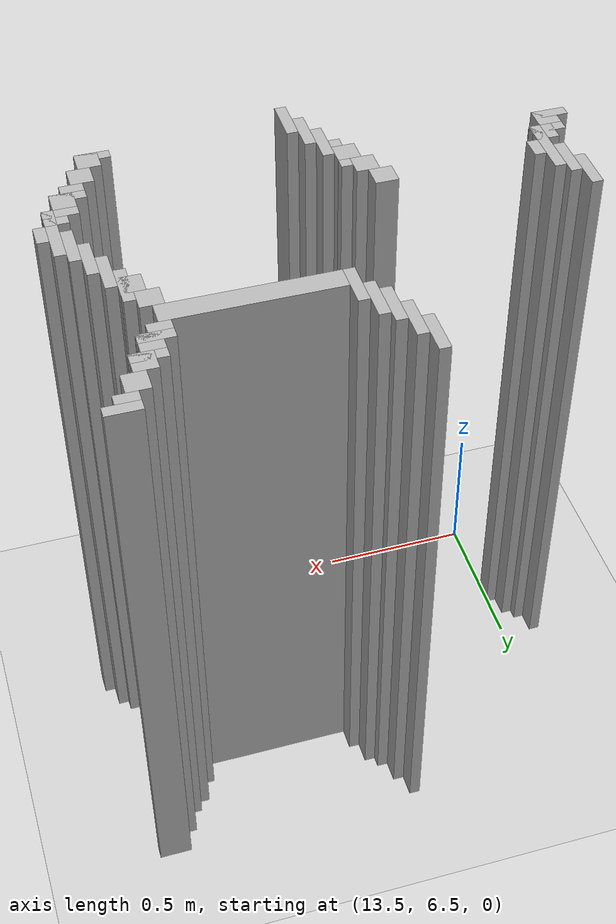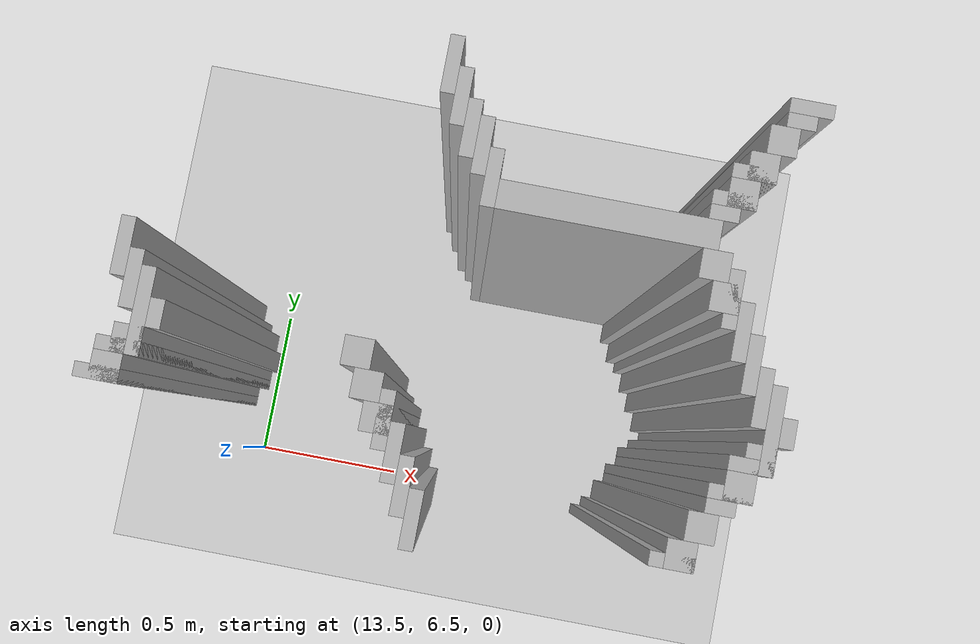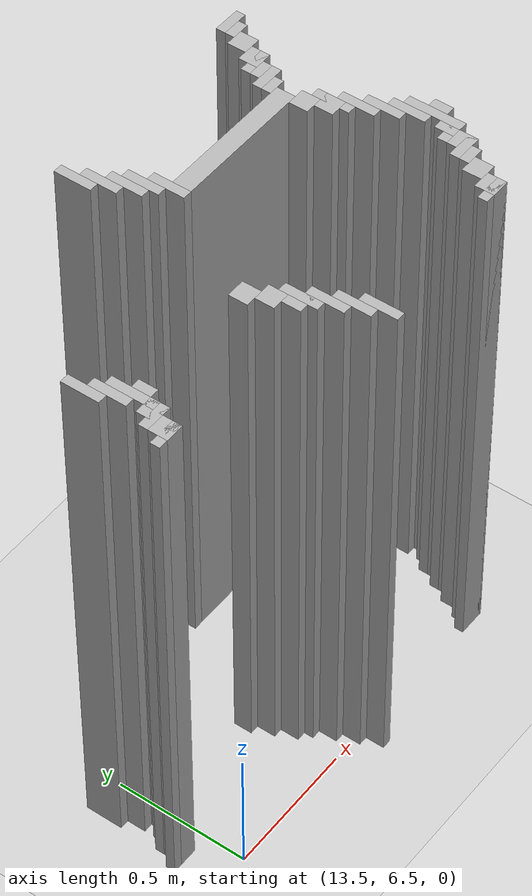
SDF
<sdf version="1.6">
 <world name="slam_world">
  <model name="ground_plane">
   <static>true</static>
   <link name="link">
    <collision name="collision">
     <geometry><plane><normal>0 0 1</normal><size>100 100</size></plane></geometry>
    </collision>
    <visual name="visual">
     <geometry><plane><normal>0 0 1</normal><size>100 100</size></plane></geometry>
     <material>
      <ambient>0.8 0.8 0.8 1</ambient>
      <diffuse>0.8 0.8 0.8 1</diffuse>
      <specular>0.8 0.8 0.8 1</specular>
     </material>
    </visual>
   </link>
  </model>
  <model name="wall_3228">
   <static>true</static>
   <pose>14.042923433874709 7.517401392111369 1.0 0 0 0</pose>
   <link name="link">
    <collision name="collision">
     <geometry><box><size>0.03480278422273782 0.13921113689095127 2.0</size></box></geometry>
    </collision>
    <visual name="visual">
     <geometry><box><size>0.03480278422273782 0.13921113689095127 2.0</size></box></geometry>
     <material><ambient>0.5 0.5 0.5 1</ambient><diffuse>0.7 0.7 0.7 1</diffuse></material>
    </visual>
   </link>
  </model>
  <model name="wall_3229">
   <static>true</static>
   <pose>14.878190255220417 7.569605568445476 1.0 0 0 0</pose>
   <link name="link">
    <collision name="collision">
     <geometry><box><size>0.10440835266821345 0.03480278422273782 2.0</size></box></geometry>
    </collision>
    <visual name="visual">
     <geometry><box><size>0.10440835266821345 0.03480278422273782 2.0</size></box></geometry>
     <material><ambient>0.5 0.5 0.5 1</ambient><diffuse>0.7 0.7 0.7 1</diffuse></material>
    </visual>
   </link>
  </model>
  <model name="wall_3238">
   <static>true</static>
   <pose>14.860788863109049 7.534802784222737 1.0 0 0 0</pose>
   <link name="link">
    <collision name="collision">
     <geometry><box><size>0.06960556844547564 0.03480278422273782 2.0</size></box></geometry>
    </collision>
    <visual name="visual">
     <geometry><box><size>0.06960556844547564 0.03480278422273782 2.0</size></box></geometry>
     <material><ambient>0.5 0.5 0.5 1</ambient><diffuse>0.7 0.7 0.7 1</diffuse></material>
    </visual>
   </link>
  </model>
  <model name="wall_3250">
   <static>true</static>
   <pose>14.077726218097448 7.447795823665893 1.0 0 0 0</pose>
   <link name="link">
    <collision name="collision">
     <geometry><box><size>0.03480278422273782 0.13921113689095127 2.0</size></box></geometry>
    </collision>
    <visual name="visual">
     <geometry><box><size>0.03480278422273782 0.13921113689095127 2.0</size></box></geometry>
     <material><ambient>0.5 0.5 0.5 1</ambient><diffuse>0.7 0.7 0.7 1</diffuse></material>
    </visual>
   </link>
  </model>
  <model name="wall_3251">
   <static>true</static>
   <pose>14.825986078886311 7.48259860788863 1.0 0 0 0</pose>
   <link name="link">
    <collision name="collision">
     <geometry><box><size>0.06960556844547564 0.06960556844547564 2.0</size></box></geometry>
    </collision>
    <visual name="visual">
     <geometry><box><size>0.06960556844547564 0.06960556844547564 2.0</size></box></geometry>
     <material><ambient>0.5 0.5 0.5 1</ambient><diffuse>0.7 0.7 0.7 1</diffuse></material>
    </visual>
   </link>
  </model>
  <model name="wall_3263">
   <static>true</static>
   <pose>14.112529002320185 7.378190255220417 1.0 0 0 0</pose>
   <link name="link">
    <collision name="collision">
     <geometry><box><size>0.03480278422273782 0.13921113689095127 2.0</size></box></geometry>
    </collision>
    <visual name="visual">
     <geometry><box><size>0.03480278422273782 0.13921113689095127 2.0</size></box></geometry>
     <material><ambient>0.5 0.5 0.5 1</ambient><diffuse>0.7 0.7 0.7 1</diffuse></material>
    </visual>
   </link>
  </model>
  <model name="wall_3264">
   <static>true</static>
   <pose>14.791183294663572 7.412993039443156 1.0 0 0 0</pose>
   <link name="link">
    <collision name="collision">
     <geometry><box><size>0.06960556844547564 0.06960556844547564 2.0</size></box></geometry>
    </collision>
    <visual name="visual">
     <geometry><box><size>0.06960556844547564 0.06960556844547564 2.0</size></box></geometry>
     <material><ambient>0.5 0.5 0.5 1</ambient><diffuse>0.7 0.7 0.7 1</diffuse></material>
    </visual>
   </link>
  </model>
  <model name="wall_3276">
   <static>true</static>
   <pose>14.147331786542923 7.34338747099768 1.0 0 0 0</pose>
   <link name="link">
    <collision name="collision">
     <geometry><box><size>0.03480278422273782 0.13921113689095127 2.0</size></box></geometry>
    </collision>
    <visual name="visual">
     <geometry><box><size>0.03480278422273782 0.13921113689095127 2.0</size></box></geometry>
     <material><ambient>0.5 0.5 0.5 1</ambient><diffuse>0.7 0.7 0.7 1</diffuse></material>
    </visual>
   </link>
  </model>
  <model name="wall_3277">
   <static>true</static>
   <pose>14.773781902552203 7.395591647331786 1.0 0 0 0</pose>
   <link name="link">
    <collision name="collision">
     <geometry><box><size>0.10440835266821345 0.03480278422273782 2.0</size></box></geometry>
    </collision>
    <visual name="visual">
     <geometry><box><size>0.10440835266821345 0.03480278422273782 2.0</size></box></geometry>
     <material><ambient>0.5 0.5 0.5 1</ambient><diffuse>0.7 0.7 0.7 1</diffuse></material>
    </visual>
   </link>
  </model>
  <model name="wall_3284">
   <static>true</static>
   <pose>14.756380510440835 7.34338747099768 1.0 0 0 0</pose>
   <link name="link">
    <collision name="collision">
     <geometry><box><size>0.06960556844547564 0.06960556844547564 2.0</size></box></geometry>
    </collision>
    <visual name="visual">
     <geometry><box><size>0.06960556844547564 0.06960556844547564 2.0</size></box></geometry>
     <material><ambient>0.5 0.5 0.5 1</ambient><diffuse>0.7 0.7 0.7 1</diffuse></material>
    </visual>
   </link>
  </model>
  <model name="wall_3296">
   <static>true</static>
   <pose>14.18213457076566 7.273781902552204 1.0 0 0 0</pose>
   <link name="link">
    <collision name="collision">
     <geometry><box><size>0.03480278422273782 0.13921113689095127 2.0</size></box></geometry>
    </collision>
    <visual name="visual">
     <geometry><box><size>0.03480278422273782 0.13921113689095127 2.0</size></box></geometry>
     <material><ambient>0.5 0.5 0.5 1</ambient><diffuse>0.7 0.7 0.7 1</diffuse></material>
    </visual>
   </link>
  </model>
  <model name="wall_3297">
   <static>true</static>
   <pose>14.738979118329466 7.32598607888631 1.0 0 0 0</pose>
   <link name="link">
    <collision name="collision">
     <geometry><box><size>0.10440835266821345 0.03480278422273782 2.0</size></box></geometry>
    </collision>
    <visual name="visual">
     <geometry><box><size>0.10440835266821345 0.03480278422273782 2.0</size></box></geometry>
     <material><ambient>0.5 0.5 0.5 1</ambient><diffuse>0.7 0.7 0.7 1</diffuse></material>
    </visual>
   </link>
  </model>
  <model name="wall_3304">
   <static>true</static>
   <pose>14.721577726218097 7.291183294663573 1.0 0 0 0</pose>
   <link name="link">
    <collision name="collision">
     <geometry><box><size>0.06960556844547564 0.03480278422273782 2.0</size></box></geometry>
    </collision>
    <visual name="visual">
     <geometry><box><size>0.06960556844547564 0.03480278422273782 2.0</size></box></geometry>
     <material><ambient>0.5 0.5 0.5 1</ambient><diffuse>0.7 0.7 0.7 1</diffuse></material>
    </visual>
   </link>
  </model>
  <model name="wall_3317">
   <static>true</static>
   <pose>14.460556844547563 7.238979118329466 1.0 0 0 0</pose>
   <link name="link">
    <collision name="collision">
     <geometry><box><size>0.5220417633410672 0.06960556844547564 2.0</size></box></geometry>
    </collision>
    <visual name="visual">
     <geometry><box><size>0.5220417633410672 0.06960556844547564 2.0</size></box></geometry>
     <material><ambient>0.5 0.5 0.5 1</ambient><diffuse>0.7 0.7 0.7 1</diffuse></material>
    </visual>
   </link>
  </model>
  <model name="wall_3329">
   <static>true</static>
   <pose>14.721577726218097 7.16937354988399 1.0 0 0 0</pose>
   <link name="link">
    <collision name="collision">
     <geometry><box><size>0.06960556844547564 0.06960556844547564 2.0</size></box></geometry>
    </collision>
    <visual name="visual">
     <geometry><box><size>0.06960556844547564 0.06960556844547564 2.0</size></box></geometry>
     <material><ambient>0.5 0.5 0.5 1</ambient><diffuse>0.7 0.7 0.7 1</diffuse></material>
    </visual>
   </link>
  </model>
  <model name="wall_3341">
   <static>true</static>
   <pose>14.773781902552203 7.099767981438514 1.0 0 0 0</pose>
   <link name="link">
    <collision name="collision">
     <geometry><box><size>0.03480278422273782 0.13921113689095127 2.0</size></box></geometry>
    </collision>
    <visual name="visual">
     <geometry><box><size>0.03480278422273782 0.13921113689095127 2.0</size></box></geometry>
     <material><ambient>0.5 0.5 0.5 1</ambient><diffuse>0.7 0.7 0.7 1</diffuse></material>
    </visual>
   </link>
  </model>
  <model name="wall_3353">
   <static>true</static>
   <pose>14.756380510440835 7.099767981438514 1.0 0 0 0</pose>
   <link name="link">
    <collision name="collision">
     <geometry><box><size>0.06960556844547564 0.06960556844547564 2.0</size></box></geometry>
    </collision>
    <visual name="visual">
     <geometry><box><size>0.06960556844547564 0.06960556844547564 2.0</size></box></geometry>
     <material><ambient>0.5 0.5 0.5 1</ambient><diffuse>0.7 0.7 0.7 1</diffuse></material>
    </visual>
   </link>
  </model>
  <model name="wall_3365">
   <static>true</static>
   <pose>14.80858468677494 7.03016241299304 1.0 0 0 0</pose>
   <link name="link">
    <collision name="collision">
     <geometry><box><size>0.03480278422273782 0.13921113689095127 2.0</size></box></geometry>
    </collision>
    <visual name="visual">
     <geometry><box><size>0.03480278422273782 0.13921113689095127 2.0</size></box></geometry>
     <material><ambient>0.5 0.5 0.5 1</ambient><diffuse>0.7 0.7 0.7 1</diffuse></material>
    </visual>
   </link>
  </model>
  <model name="wall_3381">
   <static>true</static>
   <pose>13.38167053364269 6.960556844547564 1.0 0 0 0</pose>
   <link name="link">
    <collision name="collision">
     <geometry><box><size>0.03480278422273782 0.13921113689095127 2.0</size></box></geometry>
    </collision>
    <visual name="visual">
     <geometry><box><size>0.03480278422273782 0.13921113689095127 2.0</size></box></geometry>
     <material><ambient>0.5 0.5 0.5 1</ambient><diffuse>0.7 0.7 0.7 1</diffuse></material>
    </visual>
   </link>
  </model>
  <model name="wall_3382">
   <static>true</static>
   <pose>14.84338747099768 6.960556844547564 1.0 0 0 0</pose>
   <link name="link">
    <collision name="collision">
     <geometry><box><size>0.03480278422273782 0.13921113689095127 2.0</size></box></geometry>
    </collision>
    <visual name="visual">
     <geometry><box><size>0.03480278422273782 0.13921113689095127 2.0</size></box></geometry>
     <material><ambient>0.5 0.5 0.5 1</ambient><diffuse>0.7 0.7 0.7 1</diffuse></material>
    </visual>
   </link>
  </model>
  <model name="wall_3398">
   <static>true</static>
   <pose>13.416473317865428 6.890951276102088 1.0 0 0 0</pose>
   <link name="link">
    <collision name="collision">
     <geometry><box><size>0.03480278422273782 0.13921113689095127 2.0</size></box></geometry>
    </collision>
    <visual name="visual">
     <geometry><box><size>0.03480278422273782 0.13921113689095127 2.0</size></box></geometry>
     <material><ambient>0.5 0.5 0.5 1</ambient><diffuse>0.7 0.7 0.7 1</diffuse></material>
    </visual>
   </link>
  </model>
  <model name="wall_3399">
   <static>true</static>
   <pose>14.878190255220417 6.890951276102088 1.0 0 0 0</pose>
   <link name="link">
    <collision name="collision">
     <geometry><box><size>0.03480278422273782 0.13921113689095127 2.0</size></box></geometry>
    </collision>
    <visual name="visual">
     <geometry><box><size>0.03480278422273782 0.13921113689095127 2.0</size></box></geometry>
     <material><ambient>0.5 0.5 0.5 1</ambient><diffuse>0.7 0.7 0.7 1</diffuse></material>
    </visual>
   </link>
  </model>
  <model name="wall_3410">
   <static>true</static>
   <pose>13.451276102088167 6.821345707656612 1.0 0 0 0</pose>
   <link name="link">
    <collision name="collision">
     <geometry><box><size>0.03480278422273782 0.2088167053364269 2.0</size></box></geometry>
    </collision>
    <visual name="visual">
     <geometry><box><size>0.03480278422273782 0.2088167053364269 2.0</size></box></geometry>
     <material><ambient>0.5 0.5 0.5 1</ambient><diffuse>0.7 0.7 0.7 1</diffuse></material>
    </visual>
   </link>
  </model>
  <model name="wall_3411">
   <static>true</static>
   <pose>14.912993039443155 6.821345707656612 1.0 0 0 0</pose>
   <link name="link">
    <collision name="collision">
     <geometry><box><size>0.03480278422273782 0.2088167053364269 2.0</size></box></geometry>
    </collision>
    <visual name="visual">
     <geometry><box><size>0.03480278422273782 0.2088167053364269 2.0</size></box></geometry>
     <material><ambient>0.5 0.5 0.5 1</ambient><diffuse>0.7 0.7 0.7 1</diffuse></material>
    </visual>
   </link>
  </model>
  <model name="wall_3428">
   <static>true</static>
   <pose>13.486078886310905 6.821345707656612 1.0 0 0 0</pose>
   <link name="link">
    <collision name="collision">
     <geometry><box><size>0.03480278422273782 0.06960556844547564 2.0</size></box></geometry>
    </collision>
    <visual name="visual">
     <geometry><box><size>0.03480278422273782 0.06960556844547564 2.0</size></box></geometry>
     <material><ambient>0.5 0.5 0.5 1</ambient><diffuse>0.7 0.7 0.7 1</diffuse></material>
    </visual>
   </link>
  </model>
  <model name="wall_3429">
   <static>true</static>
   <pose>13.955916473317865 6.821345707656612 1.0 0 0 0</pose>
   <link name="link">
    <collision name="collision">
     <geometry><box><size>0.06960556844547564 0.06960556844547564 2.0</size></box></geometry>
    </collision>
    <visual name="visual">
     <geometry><box><size>0.06960556844547564 0.06960556844547564 2.0</size></box></geometry>
     <material><ambient>0.5 0.5 0.5 1</ambient><diffuse>0.7 0.7 0.7 1</diffuse></material>
    </visual>
   </link>
  </model>
  <model name="wall_3430">
   <static>true</static>
   <pose>14.947795823665892 6.821345707656612 1.0 0 0 0</pose>
   <link name="link">
    <collision name="collision">
     <geometry><box><size>0.03480278422273782 0.06960556844547564 2.0</size></box></geometry>
    </collision>
    <visual name="visual">
     <geometry><box><size>0.03480278422273782 0.06960556844547564 2.0</size></box></geometry>
     <material><ambient>0.5 0.5 0.5 1</ambient><diffuse>0.7 0.7 0.7 1</diffuse></material>
    </visual>
   </link>
  </model>
  <model name="wall_3453">
   <static>true</static>
   <pose>13.433874709976797 6.751740139211137 1.0 0 0 0</pose>
   <link name="link">
    <collision name="collision">
     <geometry><box><size>0.06960556844547564 0.06960556844547564 2.0</size></box></geometry>
    </collision>
    <visual name="visual">
     <geometry><box><size>0.06960556844547564 0.06960556844547564 2.0</size></box></geometry>
     <material><ambient>0.5 0.5 0.5 1</ambient><diffuse>0.7 0.7 0.7 1</diffuse></material>
    </visual>
   </link>
  </model>
  <model name="wall_3454">
   <static>true</static>
   <pose>13.990719257540603 6.751740139211137 1.0 0 0 0</pose>
   <link name="link">
    <collision name="collision">
     <geometry><box><size>0.06960556844547564 0.06960556844547564 2.0</size></box></geometry>
    </collision>
    <visual name="visual">
     <geometry><box><size>0.06960556844547564 0.06960556844547564 2.0</size></box></geometry>
     <material><ambient>0.5 0.5 0.5 1</ambient><diffuse>0.7 0.7 0.7 1</diffuse></material>
    </visual>
   </link>
  </model>
  <model name="wall_3455">
   <static>true</static>
   <pose>14.895591647331786 6.751740139211137 1.0 0 0 0</pose>
   <link name="link">
    <collision name="collision">
     <geometry><box><size>0.06960556844547564 0.06960556844547564 2.0</size></box></geometry>
    </collision>
    <visual name="visual">
     <geometry><box><size>0.06960556844547564 0.06960556844547564 2.0</size></box></geometry>
     <material><ambient>0.5 0.5 0.5 1</ambient><diffuse>0.7 0.7 0.7 1</diffuse></material>
    </visual>
   </link>
  </model>
  <model name="wall_3473">
   <static>true</static>
   <pose>13.416473317865428 6.734338747099768 1.0 0 0 0</pose>
   <link name="link">
    <collision name="collision">
     <geometry><box><size>0.10440835266821345 0.03480278422273782 2.0</size></box></geometry>
    </collision>
    <visual name="visual">
     <geometry><box><size>0.10440835266821345 0.03480278422273782 2.0</size></box></geometry>
     <material><ambient>0.5 0.5 0.5 1</ambient><diffuse>0.7 0.7 0.7 1</diffuse></material>
    </visual>
   </link>
  </model>
  <model name="wall_3474">
   <static>true</static>
   <pose>14.042923433874709 6.682134570765661 1.0 0 0 0</pose>
   <link name="link">
    <collision name="collision">
     <geometry><box><size>0.03480278422273782 0.13921113689095127 2.0</size></box></geometry>
    </collision>
    <visual name="visual">
     <geometry><box><size>0.03480278422273782 0.13921113689095127 2.0</size></box></geometry>
     <material><ambient>0.5 0.5 0.5 1</ambient><diffuse>0.7 0.7 0.7 1</diffuse></material>
    </visual>
   </link>
  </model>
  <model name="wall_3475">
   <static>true</static>
   <pose>14.878190255220417 6.734338747099768 1.0 0 0 0</pose>
   <link name="link">
    <collision name="collision">
     <geometry><box><size>0.10440835266821345 0.03480278422273782 2.0</size></box></geometry>
    </collision>
    <visual name="visual">
     <geometry><box><size>0.10440835266821345 0.03480278422273782 2.0</size></box></geometry>
     <material><ambient>0.5 0.5 0.5 1</ambient><diffuse>0.7 0.7 0.7 1</diffuse></material>
    </visual>
   </link>
  </model>
  <model name="wall_3493">
   <static>true</static>
   <pose>13.39907192575406 6.682134570765661 1.0 0 0 0</pose>
   <link name="link">
    <collision name="collision">
     <geometry><box><size>0.06960556844547564 0.06960556844547564 2.0</size></box></geometry>
    </collision>
    <visual name="visual">
     <geometry><box><size>0.06960556844547564 0.06960556844547564 2.0</size></box></geometry>
     <material><ambient>0.5 0.5 0.5 1</ambient><diffuse>0.7 0.7 0.7 1</diffuse></material>
    </visual>
   </link>
  </model>
  <model name="wall_3494">
   <static>true</static>
   <pose>14.02552204176334 6.682134570765661 1.0 0 0 0</pose>
   <link name="link">
    <collision name="collision">
     <geometry><box><size>0.06960556844547564 0.06960556844547564 2.0</size></box></geometry>
    </collision>
    <visual name="visual">
     <geometry><box><size>0.06960556844547564 0.06960556844547564 2.0</size></box></geometry>
     <material><ambient>0.5 0.5 0.5 1</ambient><diffuse>0.7 0.7 0.7 1</diffuse></material>
    </visual>
   </link>
  </model>
  <model name="wall_3495">
   <static>true</static>
   <pose>14.860788863109049 6.682134570765661 1.0 0 0 0</pose>
   <link name="link">
    <collision name="collision">
     <geometry><box><size>0.06960556844547564 0.06960556844547564 2.0</size></box></geometry>
    </collision>
    <visual name="visual">
     <geometry><box><size>0.06960556844547564 0.06960556844547564 2.0</size></box></geometry>
     <material><ambient>0.5 0.5 0.5 1</ambient><diffuse>0.7 0.7 0.7 1</diffuse></material>
    </visual>
   </link>
  </model>
  <model name="wall_3513">
   <static>true</static>
   <pose>13.38167053364269 6.664733178654292 1.0 0 0 0</pose>
   <link name="link">
    <collision name="collision">
     <geometry><box><size>0.10440835266821345 0.03480278422273782 2.0</size></box></geometry>
    </collision>
    <visual name="visual">
     <geometry><box><size>0.10440835266821345 0.03480278422273782 2.0</size></box></geometry>
     <material><ambient>0.5 0.5 0.5 1</ambient><diffuse>0.7 0.7 0.7 1</diffuse></material>
    </visual>
   </link>
  </model>
  <model name="wall_3514">
   <static>true</static>
   <pose>14.077726218097448 6.612529002320185 1.0 0 0 0</pose>
   <link name="link">
    <collision name="collision">
     <geometry><box><size>0.03480278422273782 0.13921113689095127 2.0</size></box></geometry>
    </collision>
    <visual name="visual">
     <geometry><box><size>0.03480278422273782 0.13921113689095127 2.0</size></box></geometry>
     <material><ambient>0.5 0.5 0.5 1</ambient><diffuse>0.7 0.7 0.7 1</diffuse></material>
    </visual>
   </link>
  </model>
  <model name="wall_3515">
   <static>true</static>
   <pose>14.84338747099768 6.664733178654292 1.0 0 0 0</pose>
   <link name="link">
    <collision name="collision">
     <geometry><box><size>0.10440835266821345 0.03480278422273782 2.0</size></box></geometry>
    </collision>
    <visual name="visual">
     <geometry><box><size>0.10440835266821345 0.03480278422273782 2.0</size></box></geometry>
     <material><ambient>0.5 0.5 0.5 1</ambient><diffuse>0.7 0.7 0.7 1</diffuse></material>
    </visual>
   </link>
  </model>
  <model name="wall_3525">
   <static>true</static>
   <pose>14.825986078886311 6.629930394431554 1.0 0 0 0</pose>
   <link name="link">
    <collision name="collision">
     <geometry><box><size>0.06960556844547564 0.03480278422273782 2.0</size></box></geometry>
    </collision>
    <visual name="visual">
     <geometry><box><size>0.06960556844547564 0.03480278422273782 2.0</size></box></geometry>
     <material><ambient>0.5 0.5 0.5 1</ambient><diffuse>0.7 0.7 0.7 1</diffuse></material>
    </visual>
   </link>
  </model>
  <model name="wall_3544">
   <static>true</static>
   <pose>14.112529002320185 6.5429234338747095 1.0 0 0 0</pose>
   <link name="link">
    <collision name="collision">
     <geometry><box><size>0.03480278422273782 0.13921113689095127 2.0</size></box></geometry>
    </collision>
    <visual name="visual">
     <geometry><box><size>0.03480278422273782 0.13921113689095127 2.0</size></box></geometry>
     <material><ambient>0.5 0.5 0.5 1</ambient><diffuse>0.7 0.7 0.7 1</diffuse></material>
    </visual>
   </link>
  </model>
  <model name="wall_3545">
   <static>true</static>
   <pose>14.791183294663572 6.577726218097448 1.0 0 0 0</pose>
   <link name="link">
    <collision name="collision">
     <geometry><box><size>0.06960556844547564 0.06960556844547564 2.0</size></box></geometry>
    </collision>
    <visual name="visual">
     <geometry><box><size>0.06960556844547564 0.06960556844547564 2.0</size></box></geometry>
     <material><ambient>0.5 0.5 0.5 1</ambient><diffuse>0.7 0.7 0.7 1</diffuse></material>
    </visual>
   </link>
  </model>
  <model name="wall_3564">
   <static>true</static>
   <pose>14.147331786542923 6.473317865429234 1.0 0 0 0</pose>
   <link name="link">
    <collision name="collision">
     <geometry><box><size>0.03480278422273782 0.13921113689095127 2.0</size></box></geometry>
    </collision>
    <visual name="visual">
     <geometry><box><size>0.03480278422273782 0.13921113689095127 2.0</size></box></geometry>
     <material><ambient>0.5 0.5 0.5 1</ambient><diffuse>0.7 0.7 0.7 1</diffuse></material>
    </visual>
   </link>
  </model>
  <model name="wall_3565">
   <static>true</static>
   <pose>14.756380510440835 6.508120649651972 1.0 0 0 0</pose>
   <link name="link">
    <collision name="collision">
     <geometry><box><size>0.06960556844547564 0.06960556844547564 2.0</size></box></geometry>
    </collision>
    <visual name="visual">
     <geometry><box><size>0.06960556844547564 0.06960556844547564 2.0</size></box></geometry>
     <material><ambient>0.5 0.5 0.5 1</ambient><diffuse>0.7 0.7 0.7 1</diffuse></material>
    </visual>
   </link>
  </model>
  <model name="wall_3585">
   <static>true</static>
   <pose>14.738979118329466 6.490719257540603 1.0 0 0 0</pose>
   <link name="link">
    <collision name="collision">
     <geometry><box><size>0.10440835266821345 0.03480278422273782 2.0</size></box></geometry>
    </collision>
    <visual name="visual">
     <geometry><box><size>0.10440835266821345 0.03480278422273782 2.0</size></box></geometry>
     <material><ambient>0.5 0.5 0.5 1</ambient><diffuse>0.7 0.7 0.7 1</diffuse></material>
    </visual>
   </link>
  </model>
 </world>
</sdf>
